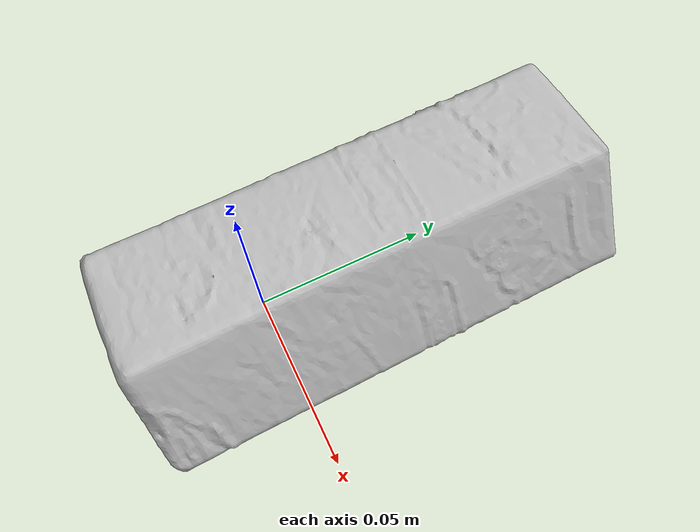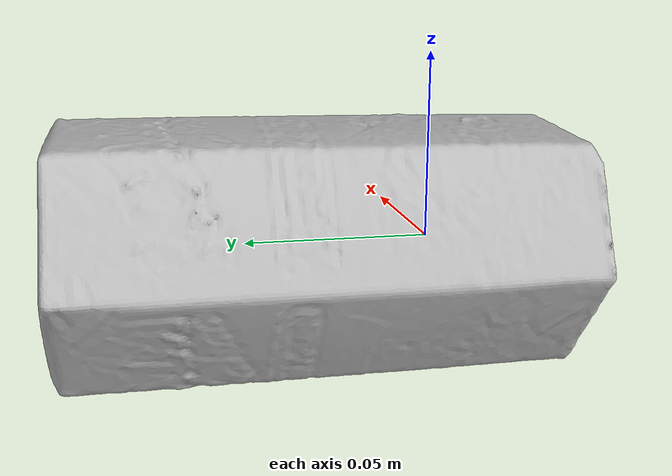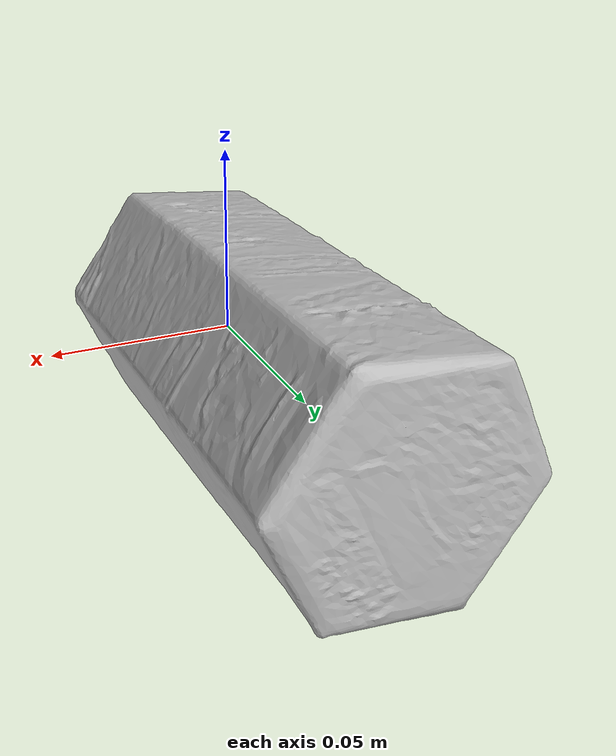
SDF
<?xml version='1.0'?>
<sdf version="1.4">
  <model name="KoalaCandy">
    <static>false</static>
    <link name="link">
      <inertial>
        <pose>-0.0008705687302822021 0.029990537165970034 -0.00035901767740377126 1.5843480369753729 0.10210879667476176 0.01751707407223316</pose>
        <mass>0.046940209344946485</mass>
        <inertia>
          <ixx>8.722072648094728e-05</ixx>
          <ixy>7.206166278009784e-22</ixy>
          <ixz>1.9304410637765206e-21</ixz>
          <iyy>8.705637177386916e-05</iyy>
          <iyz>-5.2339009101546923e-23</iyz>
          <izz>2.5385433647770635e-05</izz>
        </inertia>
      </inertial>
      <collision name="collision">
        <geometry>
          <mesh>
            <!-- Use a downsampled mesh for collisions -->
            <uri>model:///KoalaCandy/KoalaCandy_250_collision.obj</uri>
	        </mesh>
        </geometry>
        <surface>
      </surface>
      </collision>
      <visual name="visual">
        <geometry>
          <mesh>
            <uri>model:///KoalaCandy/KoalaCandy_25k_tex.obj</uri>
	        </mesh>
        </geometry>
        <material>
          <script>
            <uri>model:///KoalaCandy/KoalaCandy.material</uri>
            <name>KoalaCandy</name>
          </script>
        </material>
      </visual>
    </link>
  </model>
</sdf>
